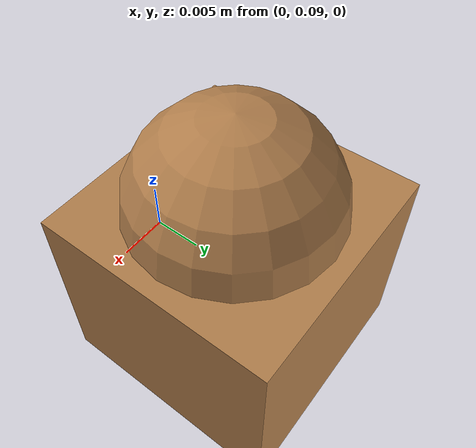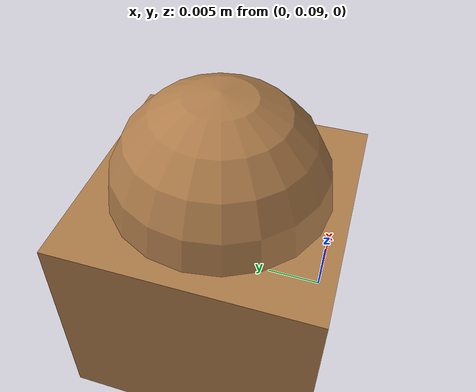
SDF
<?xml version='1.0'?>
<sdf version='1.4'>

  <model name ="support_total">
   <static>true</static>
   <pose>0.0 0.0 0.0 0 0 0</pose>

   <link name ='planch'>
    <pose>0 0 0   0 0 0</pose>
    <collision name ='collision'>
      <geometry><box><size>0.7 0.7 0.02</size></box></geometry>
   </collision>
   <visual name ='visual'>
     <geometry><box><size>0.7 0.7 0.02</size></box></geometry>
     <material>
      <script>
       <uri>file://media/materials/scripts/gazebo.material</uri>
       <name>Gazebo/Wood</name>
     </script>
   </material>
 </visual>
</link>

<link name ='sphere2'>
  <pose>0 0.1 0.01 0 0 0</pose>
  <collision name ='collision'>
   <geometry><sphere><radius>0.01</radius></sphere></geometry>
 </collision>
 <visual name ='visual'>
   <geometry><sphere><radius>0.01</radius></sphere></geometry>

   <material>
    <script>
     <uri>file://media/materials/scripts/gazebo.material</uri>
     <name>Gazebo/Wood</name>
   </script>
 </material>
</visual>
</link>

</model>
</sdf>
